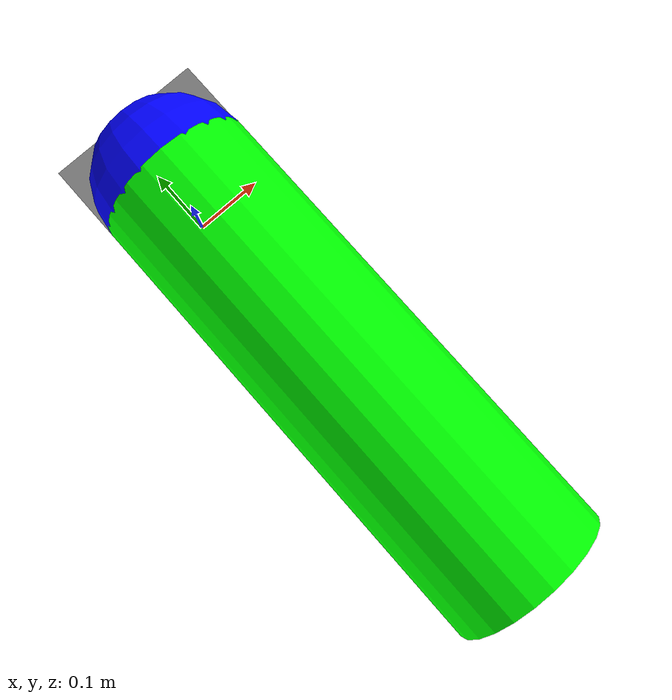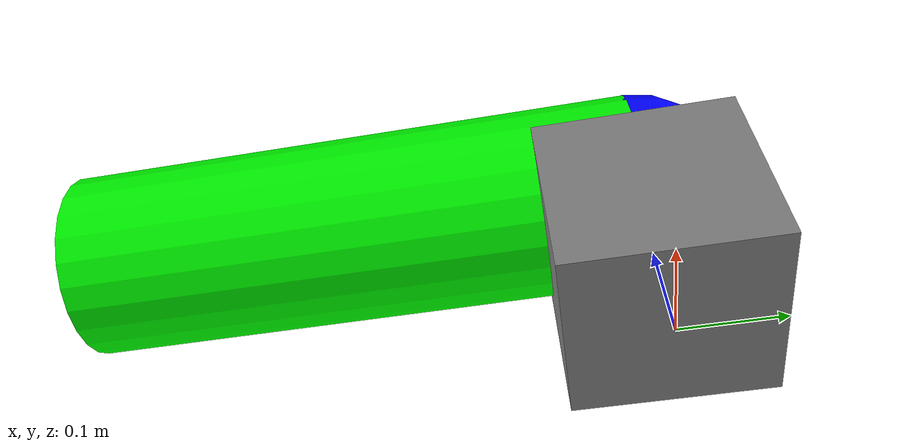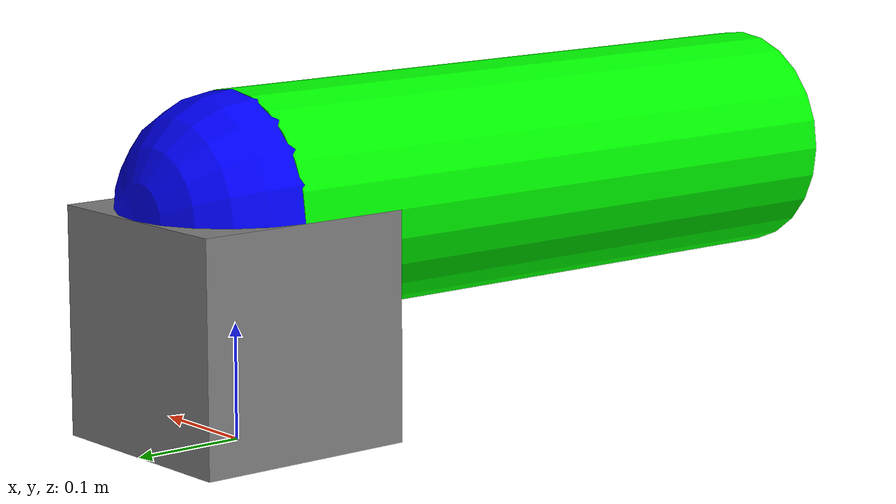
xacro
<robot name="simple_robot" xmlns:xacro="http://www.ros.org/wiki/xacro">
  <link name="world"/>
  <link name="base_link"> <!-- Each link should have a name to distinguish and refer to them -->
    <visual>
        <origin xyz="0 0 0.1" rpy="0 0 0"/>
      <geometry>
        <box size="0.2 0.2 0.2"/> <!-- This specifies the shape of the link -->
      </geometry>
      <material name="base_material"> <!-- You need to give a name to the material -->
        <color rgba="0.5 0.5 0.5 1"/> <!-- This specifies the color of the link -->
      </material>
    </visual>
  </link>

  <link name="link_1">
    <visual>
        <origin xyz="0 0 0.3" rpy="0 0 0"/>
      <geometry>
        <cylinder length="0.6" radius="0.1"/>
      </geometry>
      <material name="link1_material">
        <color rgba="0 1 0 1"/>
      </material>
    </visual>
  </link>

  <joint name="fixed" type="fixed"> <!-- it's a fixed frame because we do not want the base to move -->
    <parent link="world"/>    <!-- parent, because in the chain sequence comes before the child -->
    <child link="base_link"/> <!-- This is the child, connected by the joint to the parent -->
  </joint>

  <joint name="base_to_link_1" type="continuous"> <!-- Continuous, meaning it can rotate without upper/lower limits -->
    <origin xyz="0 0 0.2" rpy="${pi/2} 0 0"/>
    <axis xyz="0 1 0"/>
    <parent link="base_link"/>
    <child link="link_2"/>
  </joint>

  <link name="link_2">
    <visual>
      <geometry>
        <sphere radius="0.1"/>
      </geometry>
      <material name="link2_material">
        <color rgba="0 0 1 1"/>
      </material>
    </visual>
  </link>

    <joint name="link_1_to_link_2" type="continuous">
    <parent link="link_2"/>    <!-- parent, because in the chain sequence comes before the child -->
    <child link="link_1"/> <!-- This is the child, connected by the joint to the parent -->
  </joint>

</robot>
